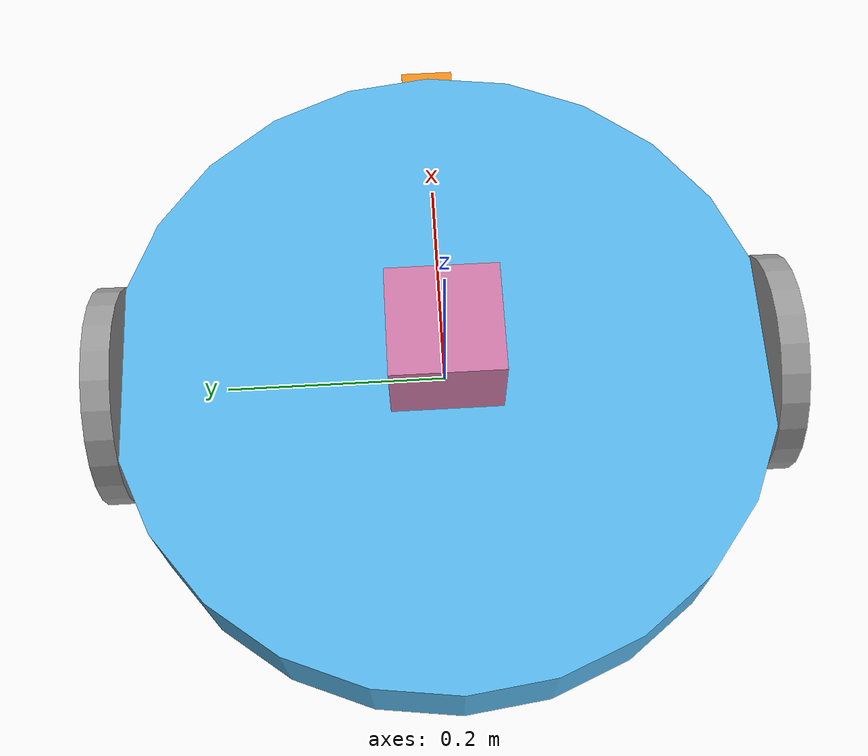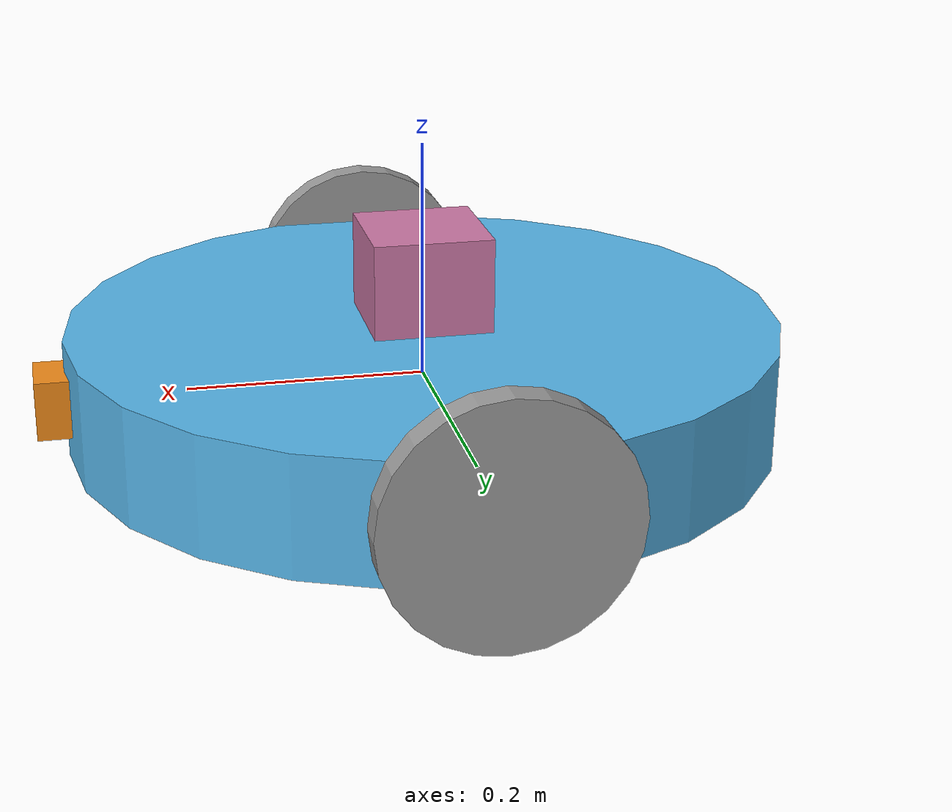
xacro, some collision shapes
<?xml version='1.0'?>

<robot name="my_robot" xmlns:xacro="http://www.ros.org/wiki/xacro">

  <gazebo reference="left_wheel">
    <material>Gazebo/Grey</material>
  </gazebo>

  <gazebo reference="right_wheel">
    <material>Gazebo/Grey</material>
  </gazebo>

  <gazebo reference="chassis">
    <material>Gazebo/RustySteel</material>
  </gazebo>

  <gazebo reference="camera">
    <material>Gazebo/Orange</material>
  </gazebo>

  <xacro:include filename="$(find my_robot)/urdf/my_robot.gazebo" />
  <link name="robot_footprint"></link>

  <joint name="robot_footprint_joint" type="fixed">
    <origin xyz="0 0 0" rpy="0 0 0" />
    <parent link="robot_footprint"/>
    <child link="chassis" />
  </joint>

  <link name='chassis'>
    <pose>0 0 0.1 0 0 0</pose>

    <inertial>
      <mass value="15.0"/>
      <origin xyz="0.0 0 0" rpy=" 0 0 0"/>
      <inertia
          ixx="0.1" ixy="0" ixz="0"
          iyy="0.1" iyz="0"
          izz="0.1"
      />
    </inertial>

    <collision name='collision'>
      <origin xyz="0 0 0" rpy=" 0 0 0"/>
      <geometry>
        <cylinder length="0.1" radius="0.3"/>
      </geometry>
    </collision>

    <visual name='chassis_visual'>
      <origin xyz="0 0 0" rpy=" 0 0 0"/>
      <geometry>
        <cylinder length="0.1" radius="0.3"/>
      </geometry>
    </visual>

    <collision name='back_caster_collision'>
      <origin xyz="-0.15 0 -0.05" rpy=" 0 0 0"/>
      <geometry>
        <sphere radius="0.0499"/>
      </geometry>
    </collision>

    <visual name='back_caster_visual'>
      <origin xyz="-0.15 0 -0.05" rpy=" 0 0 0"/>
      <geometry>
        <sphere radius="0.05"/>
      </geometry>
    </visual>

    <collision name='front_caster_collision'>
      <origin xyz="0.15 0 -0.05" rpy=" 0 0 0"/>
      <geometry>
        <sphere radius="0.0499"/>
      </geometry>
    </collision>

    <visual name='front_caster_visual'>
      <origin xyz="0.15 0 -0.05" rpy=" 0 0 0"/>
      <geometry>
        <sphere radius="0.05"/>
      </geometry>
    </visual>

  </link>

  <link name="left_wheel">
    <inertial>
      <origin xyz="0 0 0" rpy="0 1.5707 1.5707"/>
      <mass value="5"/>
      <inertia ixx="0.1" ixy="0" ixz="0" iyy="0.1" iyz="0" izz="0.1"/>
    </inertial>

    <visual>
      <origin xyz="0 0 0" rpy="0 1.5707 1.5707"/>
      <geometry>
        <cylinder length="0.025" radius="0.1"/>
      </geometry>

    </visual>

    <collision>
      <origin xyz="0 0 0" rpy="0 1.5707 1.5707"/>
      <geometry>
        <cylinder length="0.025" radius="0.1"/>
      </geometry>
    </collision>
  </link>

  <link name="right_wheel">
    <inertial>
      <origin xyz="0 0 0" rpy="0 1.5707 1.5707"/>
      <mass value="5"/>
      <inertia ixx="0.1" ixy="0" ixz="0" iyy="0.1" iyz="0" izz="0.1"/>
    </inertial>

    <visual>
      <origin xyz="0 0 0" rpy="0 1.5707 1.5707"/>
      <geometry>
        <cylinder length="0.025" radius="0.1"/>
      </geometry>
    </visual>

    <collision>
      <origin xyz="0 0 0" rpy="0 1.5707 1.5707"/>
      <geometry>
        <cylinder length="0.025" radius="0.1"/>
      </geometry>
    </collision>
  </link>

  <joint type="continuous" name="left_wheel_hinge">
    <origin xyz="0 0.3 0" rpy="0 0 0"/>
    <child link="left_wheel"/>
    <parent link="chassis"/>
    <axis xyz="0 1 0" rpy="0 0 0"/>
    <limit effort="10000" velocity="1000"/>
    <dynamics damping="1.0" friction="1.0"/>
  </joint>

  <joint type="continuous" name="right_wheel_hinge">
    <origin xyz="0 -0.3 0" rpy="0 0 0"/>
    <child link="right_wheel"/>
    <parent link="chassis"/>
    <axis xyz="0 1 0" rpy="0 0 0"/>
    <limit effort="10000" velocity="1000"/>
    <dynamics damping="1.0" friction="1.0"/>
  </joint>

  <link name="camera">
      <box_inertia m=".1" x=".05" y=",05" z=".05"/>

      <collision>
        <origin xyz="0 0 0" rpy="0 0 0" />
        <geometry>
          <box size=".05 .05 .05"/>
        </geometry>
      </collision>

      <visual>
        <origin xyz="0 0 0" rpy="0 0 0" />
        <geometry>
          <box size=".05 .05 .05"/>
        </geometry>
      </visual>

      <inertial>
        <mass value="0.1" />
        <origin xyz="0 0 0" rpy="0 0 0" />
        <inertia ixx="1e-6" ixy="0" ixz="0" iyy="1e-6" iyz="0" izz="1e-6" />
      </inertial>

  </link>

    <joint name="camera_optical_joint" type="fixed">
      <origin xyz="0 0 0" rpy="-1.5707 0 -1.5707"/>
      <parent link="camera"/>
      <child link="camera_link_optical"/>
    </joint>

    <link name="camera_link_optical">
    </link>

  <joint type="fixed" name="camera_joint">
    <origin xyz=".3 0 0" rpy="0 0 0"/>
    <child link="camera"/>
    <parent link="chassis"/>
    <axis xyz="0 1 0" rpy="0 0 0"/>
  </joint>

  <link name= 'hokuyo'>
    <inertial>
      <mass value="1e-5"/>
      <origin xyz="0 0 0" rpy=" 0 0 0"/>
      <inertia
          ixx="1e-6" ixy="0" ixz="0"
          iyy="1e-6" iyz="0"
          izz="1e-6"
      />
    </inertial>

    <collision name='collision'>
      <geometry>
        <box size=".1 .1 .1"/>
      </geometry>
      <origin xyz="0 0 0" rpy=" 0 0 0"/>
    </collision>

    <visual name='visual'>
      <geometry>
        <mesh filename="package://my_robot/meshes/hokuyo.dae"/>
      </geometry>
      <origin xyz="0 0 0" rpy=" 0 0 0"/>
    </visual>
  </link>

  <joint type="fixed" name="hokuyo_joint">
    <origin xyz="0 0 .08" rpy="0 0 0"/>
    <child link="hokuyo"/>
    <parent link="chassis"/>
    <axis xyz="0 1 0" rpy="0 0 0"/>
  </joint>

</robot>
